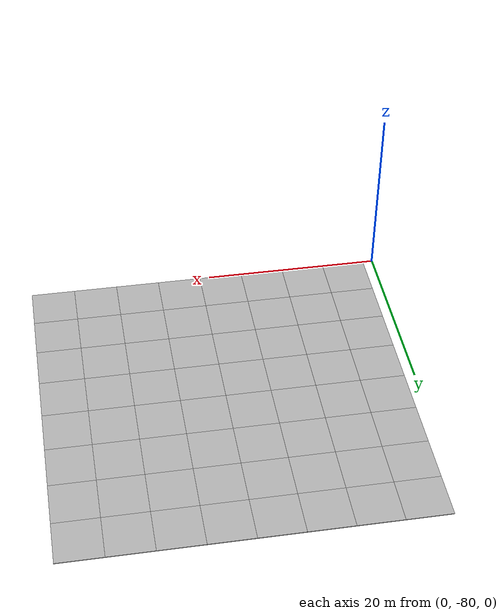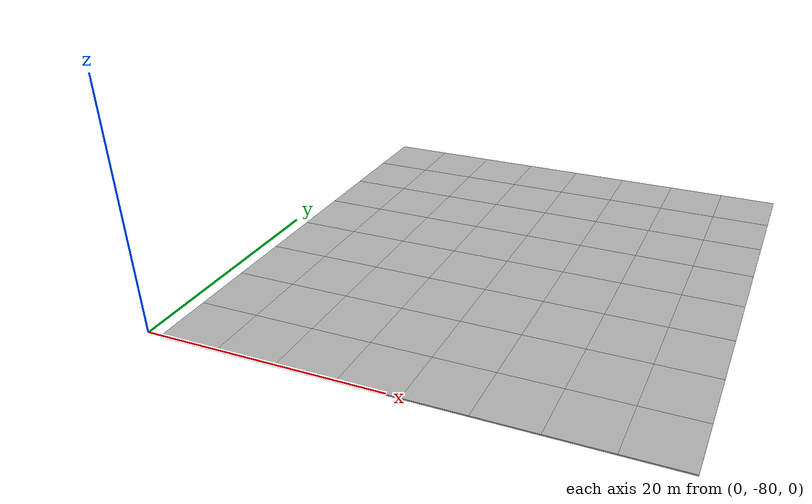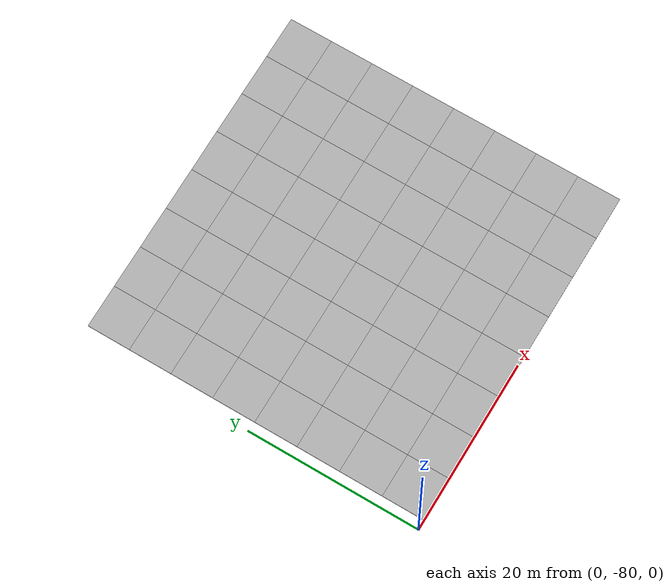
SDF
<sdf version="1.7">
 <world name="default">
  <model name="mud_plane_80x80_0">
   <model name="mud_plane_40x40_2">
    <model name="mud_plane_20x20">
     <model name="mud_plane">
      <static>1</static>
      <link name="link">
       <collision name="collision"><geometry><box><size>10 10 0.1</size></box></geometry></collision>
       <visual name="visual_1">
        <pose>-2.5 2.5 -0.05 0 -0 0</pose>
        <cast_shadows>0</cast_shadows>
        <geometry><box><size>5 5 0.1</size></box></geometry>
        <material>
         <script>
          <uri>model://mud_plane/materials/scripts</uri>
          <uri>model://mud_plane/materials/textures</uri>
          <name>vrc/mud</name>
         </script>
        </material>
       </visual>
       <visual name="visual_2">
        <pose>2.5 2.5 -0.05 0 -0 0</pose>
        <cast_shadows>0</cast_shadows>
        <geometry><box><size>5 5 0.1</size></box></geometry>
        <material>
         <script>
          <uri>model://mud_plane/materials/scripts</uri>
          <uri>model://mud_plane/materials/textures</uri>
          <name>vrc/mud</name>
         </script>
        </material>
       </visual>
       <visual name="visual_3">
        <pose>2.5 -2.5 -0.05 0 -0 0</pose>
        <cast_shadows>0</cast_shadows>
        <geometry><box><size>5 5 0.1</size></box></geometry>
        <material>
         <script>
          <uri>model://mud_plane/materials/scripts</uri>
          <uri>model://mud_plane/materials/textures</uri>
          <name>vrc/mud</name>
         </script>
        </material>
       </visual>
       <visual name="visual_4">
        <pose>-2.5 -2.5 -0.05 0 -0 0</pose>
        <cast_shadows>0</cast_shadows>
        <geometry><box><size>5 5 0.1</size></box></geometry>
        <material>
         <script>
          <uri>model://mud_plane/materials/scripts</uri>
          <uri>model://mud_plane/materials/textures</uri>
          <name>vrc/mud</name>
         </script>
        </material>
       </visual>
      </link>
      <pose>-4.99986 -4.99991 0 0 -0 0</pose>
     </model>
     <model name="mud_plane_0">
      <static>1</static>
      <link name="link">
       <collision name="collision"><geometry><box><size>10 10 0.1</size></box></geometry></collision>
       <visual name="visual_1">
        <pose>-2.5 2.5 -0.05 0 -0 0</pose>
        <cast_shadows>0</cast_shadows>
        <geometry><box><size>5 5 0.1</size></box></geometry>
        <material>
         <script>
          <uri>model://mud_plane/materials/scripts</uri>
          <uri>model://mud_plane/materials/textures</uri>
          <name>vrc/mud</name>
         </script>
        </material>
       </visual>
       <visual name="visual_2">
        <pose>2.5 2.5 -0.05 0 -0 0</pose>
        <cast_shadows>0</cast_shadows>
        <geometry><box><size>5 5 0.1</size></box></geometry>
        <material>
         <script>
          <uri>model://mud_plane/materials/scripts</uri>
          <uri>model://mud_plane/materials/textures</uri>
          <name>vrc/mud</name>
         </script>
        </material>
       </visual>
       <visual name="visual_3">
        <pose>2.5 -2.5 -0.05 0 -0 0</pose>
        <cast_shadows>0</cast_shadows>
        <geometry><box><size>5 5 0.1</size></box></geometry>
        <material>
         <script>
          <uri>model://mud_plane/materials/scripts</uri>
          <uri>model://mud_plane/materials/textures</uri>
          <name>vrc/mud</name>
         </script>
        </material>
       </visual>
       <visual name="visual_4">
        <pose>-2.5 -2.5 -0.05 0 -0 0</pose>
        <cast_shadows>0</cast_shadows>
        <geometry><box><size>5 5 0.1</size></box></geometry>
        <material>
         <script>
          <uri>model://mud_plane/materials/scripts</uri>
          <uri>model://mud_plane/materials/textures</uri>
          <name>vrc/mud</name>
         </script>
        </material>
       </visual>
      </link>
      <pose>-4.99946 4.99954 0 0 -0 0</pose>
     </model>
     <model name="mud_plane_1">
      <static>1</static>
      <link name="link">
       <collision name="collision"><geometry><box><size>10 10 0.1</size></box></geometry></collision>
       <visual name="visual_1">
        <pose>-2.5 2.5 -0.05 0 -0 0</pose>
        <cast_shadows>0</cast_shadows>
        <geometry><box><size>5 5 0.1</size></box></geometry>
        <material>
         <script>
          <uri>model://mud_plane/materials/scripts</uri>
          <uri>model://mud_plane/materials/textures</uri>
          <name>vrc/mud</name>
         </script>
        </material>
       </visual>
       <visual name="visual_2">
        <pose>2.5 2.5 -0.05 0 -0 0</pose>
        <cast_shadows>0</cast_shadows>
        <geometry><box><size>5 5 0.1</size></box></geometry>
        <material>
         <script>
          <uri>model://mud_plane/materials/scripts</uri>
          <uri>model://mud_plane/materials/textures</uri>
          <name>vrc/mud</name>
         </script>
        </material>
       </visual>
       <visual name="visual_3">
        <pose>2.5 -2.5 -0.05 0 -0 0</pose>
        <cast_shadows>0</cast_shadows>
        <geometry><box><size>5 5 0.1</size></box></geometry>
        <material>
         <script>
          <uri>model://mud_plane/materials/scripts</uri>
          <uri>model://mud_plane/materials/textures</uri>
          <name>vrc/mud</name>
         </script>
        </material>
       </visual>
       <visual name="visual_4">
        <pose>-2.5 -2.5 -0.05 0 -0 0</pose>
        <cast_shadows>0</cast_shadows>
        <geometry><box><size>5 5 0.1</size></box></geometry>
        <material>
         <script>
          <uri>model://mud_plane/materials/scripts</uri>
          <uri>model://mud_plane/materials/textures</uri>
          <name>vrc/mud</name>
         </script>
        </material>
       </visual>
      </link>
      <pose>4.99964 -4.99949 0 0 -0 0</pose>
     </model>
     <model name="mud_plane_2">
      <static>1</static>
      <link name="link">
       <collision name="collision"><geometry><box><size>10 10 0.1</size></box></geometry></collision>
       <visual name="visual_1">
        <pose>-2.5 2.5 -0.05 0 -0 0</pose>
        <cast_shadows>0</cast_shadows>
        <geometry><box><size>5 5 0.1</size></box></geometry>
        <material>
         <script>
          <uri>model://mud_plane/materials/scripts</uri>
          <uri>model://mud_plane/materials/textures</uri>
          <name>vrc/mud</name>
         </script>
        </material>
       </visual>
       <visual name="visual_2">
        <pose>2.5 2.5 -0.05 0 -0 0</pose>
        <cast_shadows>0</cast_shadows>
        <geometry><box><size>5 5 0.1</size></box></geometry>
        <material>
         <script>
          <uri>model://mud_plane/materials/scripts</uri>
          <uri>model://mud_plane/materials/textures</uri>
          <name>vrc/mud</name>
         </script>
        </material>
       </visual>
       <visual name="visual_3">
        <pose>2.5 -2.5 -0.05 0 -0 0</pose>
        <cast_shadows>0</cast_shadows>
        <geometry><box><size>5 5 0.1</size></box></geometry>
        <material>
         <script>
          <uri>model://mud_plane/materials/scripts</uri>
          <uri>model://mud_plane/materials/textures</uri>
          <name>vrc/mud</name>
         </script>
        </material>
       </visual>
       <visual name="visual_4">
        <pose>-2.5 -2.5 -0.05 0 -0 0</pose>
        <cast_shadows>0</cast_shadows>
        <geometry><box><size>5 5 0.1</size></box></geometry>
        <material>
         <script>
          <uri>model://mud_plane/materials/scripts</uri>
          <uri>model://mud_plane/materials/textures</uri>
          <name>vrc/mud</name>
         </script>
        </material>
       </visual>
      </link>
      <pose>4.99967 4.99986 0 0 -0 0</pose>
     </model>
     <static>0</static>
     <pose>-9.99895 9.99843 0 0 -0 0</pose>
    </model>
    <model name="mud_plane_20x20_0">
     <model name="mud_plane">
      <static>1</static>
      <link name="link">
       <collision name="collision"><geometry><box><size>10 10 0.1</size></box></geometry></collision>
       <visual name="visual_1">
        <pose>-2.5 2.5 -0.05 0 -0 0</pose>
        <cast_shadows>0</cast_shadows>
        <geometry><box><size>5 5 0.1</size></box></geometry>
        <material>
         <script>
          <uri>model://mud_plane/materials/scripts</uri>
          <uri>model://mud_plane/materials/textures</uri>
          <name>vrc/mud</name>
         </script>
        </material>
       </visual>
       <visual name="visual_2">
        <pose>2.5 2.5 -0.05 0 -0 0</pose>
        <cast_shadows>0</cast_shadows>
        <geometry><box><size>5 5 0.1</size></box></geometry>
        <material>
         <script>
          <uri>model://mud_plane/materials/scripts</uri>
          <uri>model://mud_plane/materials/textures</uri>
          <name>vrc/mud</name>
         </script>
        </material>
       </visual>
       <visual name="visual_3">
        <pose>2.5 -2.5 -0.05 0 -0 0</pose>
        <cast_shadows>0</cast_shadows>
        <geometry><box><size>5 5 0.1</size></box></geometry>
        <material>
         <script>
          <uri>model://mud_plane/materials/scripts</uri>
          <uri>model://mud_plane/materials/textures</uri>
          <name>vrc/mud</name>
         </script>
        </material>
       </visual>
       <visual name="visual_4">
        <pose>-2.5 -2.5 -0.05 0 -0 0</pose>
        <cast_shadows>0</cast_shadows>
        <geometry><box><size>5 5 0.1</size></box></geometry>
        <material>
         <script>
          <uri>model://mud_plane/materials/scripts</uri>
          <uri>model://mud_plane/materials/textures</uri>
          <name>vrc/mud</name>
         </script>
        </material>
       </visual>
      </link>
      <pose>-4.99986 -4.99991 0 0 -0 0</pose>
     </model>
     <model name="mud_plane_0">
      <static>1</static>
      <link name="link">
       <collision name="collision"><geometry><box><size>10 10 0.1</size></box></geometry></collision>
       <visual name="visual_1">
        <pose>-2.5 2.5 -0.05 0 -0 0</pose>
        <cast_shadows>0</cast_shadows>
        <geometry><box><size>5 5 0.1</size></box></geometry>
        <material>
         <script>
          <uri>model://mud_plane/materials/scripts</uri>
          <uri>model://mud_plane/materials/textures</uri>
          <name>vrc/mud</name>
         </script>
        </material>
       </visual>
       <visual name="visual_2">
        <pose>2.5 2.5 -0.05 0 -0 0</pose>
        <cast_shadows>0</cast_shadows>
        <geometry><box><size>5 5 0.1</size></box></geometry>
        <material>
         <script>
          <uri>model://mud_plane/materials/scripts</uri>
          <uri>model://mud_plane/materials/textures</uri>
          <name>vrc/mud</name>
         </script>
        </material>
       </visual>
       <visual name="visual_3">
        <pose>2.5 -2.5 -0.05 0 -0 0</pose>
        <cast_shadows>0</cast_shadows>
        <geometry><box><size>5 5 0.1</size></box></geometry>
        <material>
         <script>
          <uri>model://mud_plane/materials/scripts</uri>
          <uri>model://mud_plane/materials/textures</uri>
          <name>vrc/mud</name>
         </script>
        </material>
       </visual>
       <visual name="visual_4">
        <pose>-2.5 -2.5 -0.05 0 -0 0</pose>
        <cast_shadows>0</cast_shadows>
        <geometry><box><size>5 5 0.1</size></box></geometry>
        <material>
         <script>
          <uri>model://mud_plane/materials/scripts</uri>
          <uri>model://mud_plane/materials/textures</uri>
          <name>vrc/mud</name>
         </script>
        </material>
       </visual>
      </link>
      <pose>-4.99946 4.99954 0 0 -0 0</pose>
     </model>
     <model name="mud_plane_1">
      <static>1</static>
      <link name="link">
       <collision name="collision"><geometry><box><size>10 10 0.1</size></box></geometry></collision>
       <visual name="visual_1">
        <pose>-2.5 2.5 -0.05 0 -0 0</pose>
        <cast_shadows>0</cast_shadows>
        <geometry><box><size>5 5 0.1</size></box></geometry>
        <material>
         <script>
          <uri>model://mud_plane/materials/scripts</uri>
          <uri>model://mud_plane/materials/textures</uri>
          <name>vrc/mud</name>
         </script>
        </material>
       </visual>
       <visual name="visual_2">
        <pose>2.5 2.5 -0.05 0 -0 0</pose>
        <cast_shadows>0</cast_shadows>
        <geometry><box><size>5 5 0.1</size></box></geometry>
        <material>
         <script>
          <uri>model://mud_plane/materials/scripts</uri>
          <uri>model://mud_plane/materials/textures</uri>
          <name>vrc/mud</name>
         </script>
        </material>
       </visual>
       <visual name="visual_3">
        <pose>2.5 -2.5 -0.05 0 -0 0</pose>
        <cast_shadows>0</cast_shadows>
        <geometry><box><size>5 5 0.1</size></box></geometry>
        <material>
         <script>
          <uri>model://mud_plane/materials/scripts</uri>
          <uri>model://mud_plane/materials/textures</uri>
          <name>vrc/mud</name>
         </script>
        </material>
       </visual>
       <visual name="visual_4">
        <pose>-2.5 -2.5 -0.05 0 -0 0</pose>
        <cast_shadows>0</cast_shadows>
        <geometry><box><size>5 5 0.1</size></box></geometry>
        <material>
         <script>
          <uri>model://mud_plane/materials/scripts</uri>
          <uri>model://mud_plane/materials/textures</uri>
          <name>vrc/mud</name>
         </script>
        </material>
       </visual>
      </link>
      <pose>4.99964 -4.99949 0 0 -0 0</pose>
     </model>
     <model name="mud_plane_2">
      <static>1</static>
      <link name="link">
       <collision name="collision"><geometry><box><size>10 10 0.1</size></box></geometry></collision>
       <visual name="visual_1">
        <pose>-2.5 2.5 -0.05 0 -0 0</pose>
        <cast_shadows>0</cast_shadows>
        <geometry><box><size>5 5 0.1</size></box></geometry>
        <material>
         <script>
          <uri>model://mud_plane/materials/scripts</uri>
          <uri>model://mud_plane/materials/textures</uri>
          <name>vrc/mud</name>
         </script>
        </material>
       </visual>
       <visual name="visual_2">
        <pose>2.5 2.5 -0.05 0 -0 0</pose>
        <cast_shadows>0</cast_shadows>
        <geometry><box><size>5 5 0.1</size></box></geometry>
        <material>
         <script>
          <uri>model://mud_plane/materials/scripts</uri>
          <uri>model://mud_plane/materials/textures</uri>
          <name>vrc/mud</name>
         </script>
        </material>
       </visual>
       <visual name="visual_3">
        <pose>2.5 -2.5 -0.05 0 -0 0</pose>
        <cast_shadows>0</cast_shadows>
        <geometry><box><size>5 5 0.1</size></box></geometry>
        <material>
         <script>
          <uri>model://mud_plane/materials/scripts</uri>
          <uri>model://mud_plane/materials/textures</uri>
          <name>vrc/mud</name>
         </script>
        </material>
       </visual>
       <visual name="visual_4">
        <pose>-2.5 -2.5 -0.05 0 -0 0</pose>
        <cast_shadows>0</cast_shadows>
        <geometry><box><size>5 5 0.1</size></box></geometry>
        <material>
         <script>
          <uri>model://mud_plane/materials/scripts</uri>
          <uri>model://mud_plane/materials/textures</uri>
          <name>vrc/mud</name>
         </script>
        </material>
       </visual>
      </link>
      <pose>4.99967 4.99986 0 0 -0 0</pose>
     </model>
     <static>0</static>
     <pose>9.99933 9.9997 0 0 -0 0</pose>
    </model>
    <model name="mud_plane_20x20_1">
     <model name="mud_plane">
      <static>1</static>
      <link name="link">
       <collision name="collision"><geometry><box><size>10 10 0.1</size></box></geometry></collision>
       <visual name="visual_1">
        <pose>-2.5 2.5 -0.05 0 -0 0</pose>
        <cast_shadows>0</cast_shadows>
        <geometry><box><size>5 5 0.1</size></box></geometry>
        <material>
         <script>
          <uri>model://mud_plane/materials/scripts</uri>
          <uri>model://mud_plane/materials/textures</uri>
          <name>vrc/mud</name>
         </script>
        </material>
       </visual>
       <visual name="visual_2">
        <pose>2.5 2.5 -0.05 0 -0 0</pose>
        <cast_shadows>0</cast_shadows>
        <geometry><box><size>5 5 0.1</size></box></geometry>
        <material>
         <script>
          <uri>model://mud_plane/materials/scripts</uri>
          <uri>model://mud_plane/materials/textures</uri>
          <name>vrc/mud</name>
         </script>
        </material>
       </visual>
       <visual name="visual_3">
        <pose>2.5 -2.5 -0.05 0 -0 0</pose>
        <cast_shadows>0</cast_shadows>
        <geometry><box><size>5 5 0.1</size></box></geometry>
        <material>
         <script>
          <uri>model://mud_plane/materials/scripts</uri>
          <uri>model://mud_plane/materials/textures</uri>
          <name>vrc/mud</name>
         </script>
        </material>
       </visual>
       <visual name="visual_4">
        <pose>-2.5 -2.5 -0.05 0 -0 0</pose>
        <cast_shadows>0</cast_shadows>
        <geometry><box><size>5 5 0.1</size></box></geometry>
        <material>
         <script>
          <uri>model://mud_plane/materials/scripts</uri>
          <uri>model://mud_plane/materials/textures</uri>
          <name>vrc/mud</name>
         </script>
        </material>
       </visual>
      </link>
      <pose>-4.99986 -4.99991 0 0 -0 0</pose>
     </model>
     <model name="mud_plane_0">
      <static>1</static>
      <link name="link">
       <collision name="collision"><geometry><box><size>10 10 0.1</size></box></geometry></collision>
       <visual name="visual_1">
        <pose>-2.5 2.5 -0.05 0 -0 0</pose>
        <cast_shadows>0</cast_shadows>
        <geometry><box><size>5 5 0.1</size></box></geometry>
        <material>
         <script>
          <uri>model://mud_plane/materials/scripts</uri>
          <uri>model://mud_plane/materials/textures</uri>
          <name>vrc/mud</name>
         </script>
        </material>
       </visual>
       <visual name="visual_2">
        <pose>2.5 2.5 -0.05 0 -0 0</pose>
        <cast_shadows>0</cast_shadows>
        <geometry><box><size>5 5 0.1</size></box></geometry>
        <material>
         <script>
          <uri>model://mud_plane/materials/scripts</uri>
          <uri>model://mud_plane/materials/textures</uri>
          <name>vrc/mud</name>
         </script>
        </material>
       </visual>
       <visual name="visual_3">
        <pose>2.5 -2.5 -0.05 0 -0 0</pose>
        <cast_shadows>0</cast_shadows>
        <geometry><box><size>5 5 0.1</size></box></geometry>
        <material>
         <script>
          <uri>model://mud_plane/materials/scripts</uri>
          <uri>model://mud_plane/materials/textures</uri>
          <name>vrc/mud</name>
         </script>
        </material>
       </visual>
       <visual name="visual_4">
        <pose>-2.5 -2.5 -0.05 0 -0 0</pose>
        <cast_shadows>0</cast_shadows>
        <geometry><box><size>5 5 0.1</size></box></geometry>
        <material>
         <script>
          <uri>model://mud_plane/materials/scripts</uri>
          <uri>model://mud_plane/materials/textures</uri>
          <name>vrc/mud</name>
         </script>
        </material>
       </visual>
      </link>
      <pose>-4.99946 4.99954 0 0 -0 0</pose>
     </model>
     <model name="mud_plane_1">
      <static>1</static>
      <link name="link">
       <collision name="collision"><geometry><box><size>10 10 0.1</size></box></geometry></collision>
       <visual name="visual_1">
        <pose>-2.5 2.5 -0.05 0 -0 0</pose>
        <cast_shadows>0</cast_shadows>
        <geometry><box><size>5 5 0.1</size></box></geometry>
        <material>
         <script>
          <uri>model://mud_plane/materials/scripts</uri>
          <uri>model://mud_plane/materials/textures</uri>
          <name>vrc/mud</name>
         </script>
        </material>
       </visual>
       <visual name="visual_2">
        <pose>2.5 2.5 -0.05 0 -0 0</pose>
        <cast_shadows>0</cast_shadows>
        <geometry><box><size>5 5 0.1</size></box></geometry>
        <material>
         <script>
          <uri>model://mud_plane/materials/scripts</uri>
          <uri>model://mud_plane/materials/textures</uri>
          <name>vrc/mud</name>
         </script>
        </material>
       </visual>
       <visual name="visual_3">
        <pose>2.5 -2.5 -0.05 0 -0 0</pose>
        <cast_shadows>0</cast_shadows>
        <geometry><box><size>5 5 0.1</size></box></geometry>
        <material>
         <script>
          <uri>model://mud_plane/materials/scripts</uri>
          <uri>model://mud_plane/materials/textures</uri>
          <name>vrc/mud</name>
         </script>
        </material>
       </visual>
       <visual name="visual_4">
        <pose>-2.5 -2.5 -0.05 0 -0 0</pose>
        <cast_shadows>0</cast_shadows>
        <geometry><box><size>5 5 0.1</size></box></geometry>
        <material>
         <script>
          <uri>model://mud_plane/materials/scripts</uri>
          <uri>model://mud_plane/materials/textures</uri>
          <name>vrc/mud</name>
         </script>
        </material>
       </visual>
      </link>
      <pose>4.99964 -4.99949 0 0 -0 0</pose>
     </model>
     <model name="mud_plane_2">
      <static>1</static>
      <link name="link">
       <collision name="collision"><geometry><box><size>10 10 0.1</size></box></geometry></collision>
       <visual name="visual_1">
        <pose>-2.5 2.5 -0.05 0 -0 0</pose>
        <cast_shadows>0</cast_shadows>
        <geometry><box><size>5 5 0.1</size></box></geometry>
        <material>
         <script>
          <uri>model://mud_plane/materials/scripts</uri>
          <uri>model://mud_plane/materials/textures</uri>
          <name>vrc/mud</name>
         </script>
        </material>
       </visual>
       <visual name="visual_2">
        <pose>2.5 2.5 -0.05 0 -0 0</pose>
        <cast_shadows>0</cast_shadows>
        <geometry><box><size>5 5 0.1</size></box></geometry>
        <material>
         <script>
          <uri>model://mud_plane/materials/scripts</uri>
          <uri>model://mud_plane/materials/textures</uri>
          <name>vrc/mud</name>
         </script>
        </material>
       </visual>
       <visual name="visual_3">
        <pose>2.5 -2.5 -0.05 0 -0 0</pose>
        <cast_shadows>0</cast_shadows>
        <geometry><box><size>5 5 0.1</size></box></geometry>
        <material>
         <script>
          <uri>model://mud_plane/materials/scripts</uri>
          <uri>model://mud_plane/materials/textures</uri>
          <name>vrc/mud</name>
         </script>
        </material>
       </visual>
       <visual name="visual_4">
        <pose>-2.5 -2.5 -0.05 0 -0 0</pose>
        <cast_shadows>0</cast_shadows>
        <geometry><box><size>5 5 0.1</size></box></geometry>
        <material>
         <script>
          <uri>model://mud_plane/materials/scripts</uri>
          <uri>model://mud_plane/materials/textures</uri>
          <name>vrc/mud</name>
         </script>
        </material>
       </visual>
      </link>
      <pose>4.99967 4.99986 0 0 -0 0</pose>
     </model>
     <static>0</static>
     <pose>9.9993 -9.99877 0 0 -0 0</pose>
    </model>
    <model name="mud_plane_20x20_2">
     <model name="mud_plane">
      <static>1</static>
      <link name="link">
       <collision name="collision"><geometry><box><size>10 10 0.1</size></box></geometry></collision>
       <visual name="visual_1">
        <pose>-2.5 2.5 -0.05 0 -0 0</pose>
        <cast_shadows>0</cast_shadows>
        <geometry><box><size>5 5 0.1</size></box></geometry>
        <material>
         <script>
          <uri>model://mud_plane/materials/scripts</uri>
          <uri>model://mud_plane/materials/textures</uri>
          <name>vrc/mud</name>
         </script>
        </material>
       </visual>
       <visual name="visual_2">
        <pose>2.5 2.5 -0.05 0 -0 0</pose>
        <cast_shadows>0</cast_shadows>
        <geometry><box><size>5 5 0.1</size></box></geometry>
        <material>
         <script>
          <uri>model://mud_plane/materials/scripts</uri>
          <uri>model://mud_plane/materials/textures</uri>
          <name>vrc/mud</name>
         </script>
        </material>
       </visual>
       <visual name="visual_3">
        <pose>2.5 -2.5 -0.05 0 -0 0</pose>
        <cast_shadows>0</cast_shadows>
        <geometry><box><size>5 5 0.1</size></box></geometry>
        <material>
         <script>
          <uri>model://mud_plane/materials/scripts</uri>
          <uri>model://mud_plane/materials/textures</uri>
          <name>vrc/mud</name>
         </script>
        </material>
       </visual>
       <visual name="visual_4">
        <pose>-2.5 -2.5 -0.05 0 -0 0</pose>
        <cast_shadows>0</cast_shadows>
        <geometry><box><size>5 5 0.1</size></box></geometry>
        <material>
         <script>
          <uri>model://mud_plane/materials/scripts</uri>
          <uri>model://mud_plane/materials/textures</uri>
          <name>vrc/mud</name>
         </script>
        </material>
       </visual>
      </link>
      <pose>-4.99986 -4.99991 0 0 -0 0</pose>
     </model>
     <model name="mud_plane_0">
      <static>1</static>
      <link name="link">
       <collision name="collision"><geometry><box><size>10 10 0.1</size></box></geometry></collision>
       <visual name="visual_1">
        <pose>-2.5 2.5 -0.05 0 -0 0</pose>
        <cast_shadows>0</cast_shadows>
        <geometry><box><size>5 5 0.1</size></box></geometry>
        <material>
         <script>
          <uri>model://mud_plane/materials/scripts</uri>
          <uri>model://mud_plane/materials/textures</uri>
          <name>vrc/mud</name>
         </script>
        </material>
       </visual>
       <visual name="visual_2">
        <pose>2.5 2.5 -0.05 0 -0 0</pose>
        <cast_shadows>0</cast_shadows>
        <geometry><box><size>5 5 0.1</size></box></geometry>
        <material>
         <script>
          <uri>model://mud_plane/materials/scripts</uri>
          <uri>model://mud_plane/materials/textures</uri>
          <name>vrc/mud</name>
         </script>
        </material>
       </visual>
       <visual name="visual_3">
        <pose>2.5 -2.5 -0.05 0 -0 0</pose>
        <cast_shadows>0</cast_shadows>
        <geometry><box><size>5 5 0.1</size></box></geometry>
        <material>
         <script>
          <uri>model://mud_plane/materials/scripts</uri>
          <uri>model://mud_plane/materials/textures</uri>
          <name>vrc/mud</name>
         </script>
        </material>
       </visual>
       <visual name="visual_4">
        <pose>-2.5 -2.5 -0.05 0 -0 0</pose>
        <cast_shadows>0</cast_shadows>
        <geometry><box><size>5 5 0.1</size></box></geometry>
        <material>
         <script>
          <uri>model://mud_plane/materials/scripts</uri>
          <uri>model://mud_plane/materials/textures</uri>
          <name>vrc/mud</name>
         </script>
        </material>
       </visual>
      </link>
      <pose>-4.99946 4.99954 0 0 -0 0</pose>
     </model>
     <model name="mud_plane_1">
      <static>1</static>
      <link name="link">
       <collision name="collision"><geometry><box><size>10 10 0.1</size></box></geometry></collision>
       <visual name="visual_1">
        <pose>-2.5 2.5 -0.05 0 -0 0</pose>
        <cast_shadows>0</cast_shadows>
        <geometry><box><size>5 5 0.1</size></box></geometry>
        <material>
         <script>
          <uri>model://mud_plane/materials/scripts</uri>
          <uri>model://mud_plane/materials/textures</uri>
          <name>vrc/mud</name>
         </script>
        </material>
       </visual>
       <visual name="visual_2">
        <pose>2.5 2.5 -0.05 0 -0 0</pose>
        <cast_shadows>0</cast_shadows>
        <geometry><box><size>5 5 0.1</size></box></geometry>
        <material>
         <script>
          <uri>model://mud_plane/materials/scripts</uri>
          <uri>model://mud_plane/materials/textures</uri>
          <name>vrc/mud</name>
         </script>
        </material>
       </visual>
       <visual name="visual_3">
        <pose>2.5 -2.5 -0.05 0 -0 0</pose>
        <cast_shadows>0</cast_shadows>
        <geometry><box><size>5 5 0.1</size></box></geometry>
        <material>
         <script>
          <uri>model://mud_plane/materials/scripts</uri>
          <uri>model://mud_plane/materials/textures</uri>
          <name>vrc/mud</name>
         </script>
        </material>
       </visual>
       <visual name="visual_4">
        <pose>-2.5 -2.5 -0.05 0 -0 0</pose>
        <cast_shadows>0</cast_shadows>
        <geometry><box><size>5 5 0.1</size></box></geometry>
        <material>
         <script>
          <uri>model://mud_plane/materials/scripts</uri>
          <uri>model://mud_plane/materials/textures</uri>
          <name>vrc/mud</name>
         </script>
        </material>
       </visual>
      </link>
      <pose>4.99964 -4.99949 0 0 -0 0</pose>
     </model>
     <model name="mud_plane_2">
      <static>1</static>
      <link name="link">
       <collision name="collision"><geometry><box><size>10 10 0.1</size></box></geometry></collision>
       <visual name="visual_1">
        <pose>-2.5 2.5 -0.05 0 -0 0</pose>
        <cast_shadows>0</cast_shadows>
        <geometry><box><size>5 5 0.1</size></box></geometry>
        <material>
         <script>
          <uri>model://mud_plane/materials/scripts</uri>
          <uri>model://mud_plane/materials/textures</uri>
          <name>vrc/mud</name>
         </script>
        </material>
       </visual>
       <visual name="visual_2">
        <pose>2.5 2.5 -0.05 0 -0 0</pose>
        <cast_shadows>0</cast_shadows>
        <geometry><box><size>5 5 0.1</size></box></geometry>
        <material>
         <script>
          <uri>model://mud_plane/materials/scripts</uri>
          <uri>model://mud_plane/materials/textures</uri>
          <name>vrc/mud</name>
         </script>
        </material>
       </visual>
       <visual name="visual_3">
        <pose>2.5 -2.5 -0.05 0 -0 0</pose>
        <cast_shadows>0</cast_shadows>
        <geometry><box><size>5 5 0.1</size></box></geometry>
        <material>
         <script>
          <uri>model://mud_plane/materials/scripts</uri>
          <uri>model://mud_plane/materials/textures</uri>
          <name>vrc/mud</name>
         </script>
        </material>
       </visual>
       <visual name="visual_4">
        <pose>-2.5 -2.5 -0.05 0 -0 0</pose>
        <cast_shadows>0</cast_shadows>
        <geometry><box><size>5 5 0.1</size></box></geometry>
        <material>
         <script>
          <uri>model://mud_plane/materials/scripts</uri>
          <uri>model://mud_plane/materials/textures</uri>
          <name>vrc/mud</name>
         </script>
        </material>
       </visual>
      </link>
      <pose>4.99967 4.99986 0 0 -0 0</pose>
     </model>
     <static>0</static>
     <pose>-9.99969 -9.99935 0 0 -0 0</pose>
    </model>
    <static>0</static>
    <pose>-19.9989 -19.9993 0 0 -0 0</pose>
   </model>
   <static>0</static>
   <pose>41.1505 -40.0966 0 0 -0 0</pose>
  </model>
 </world>
</sdf>
